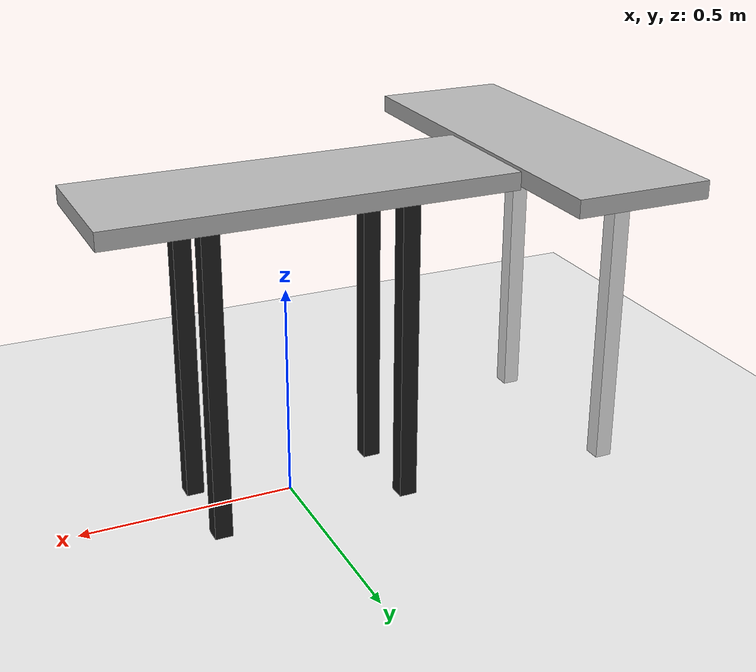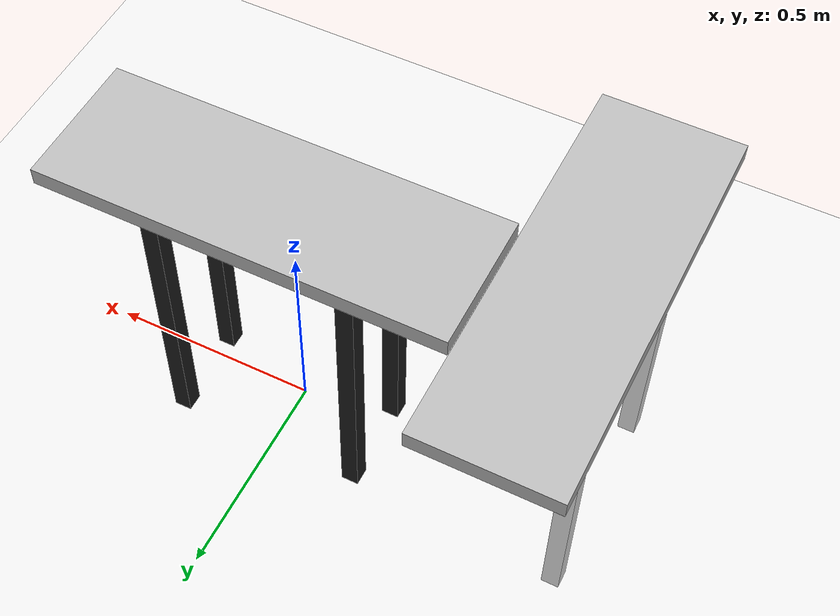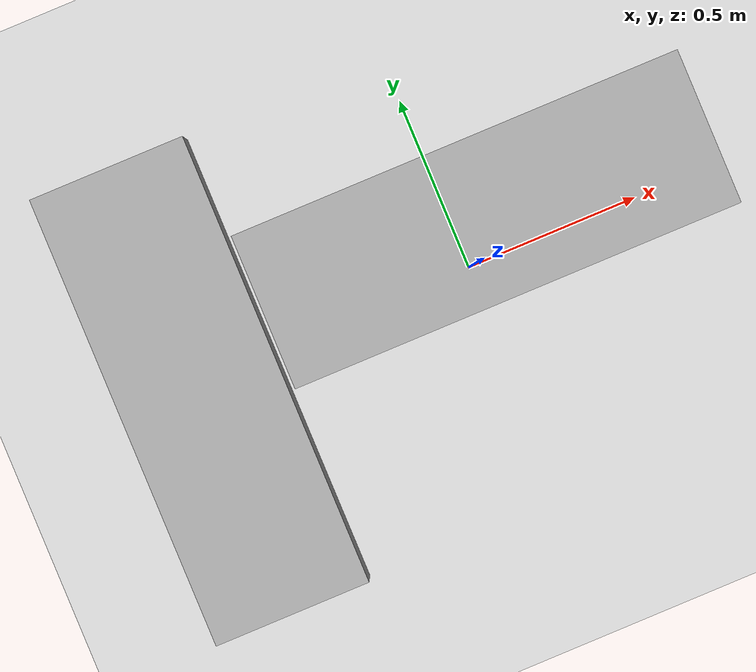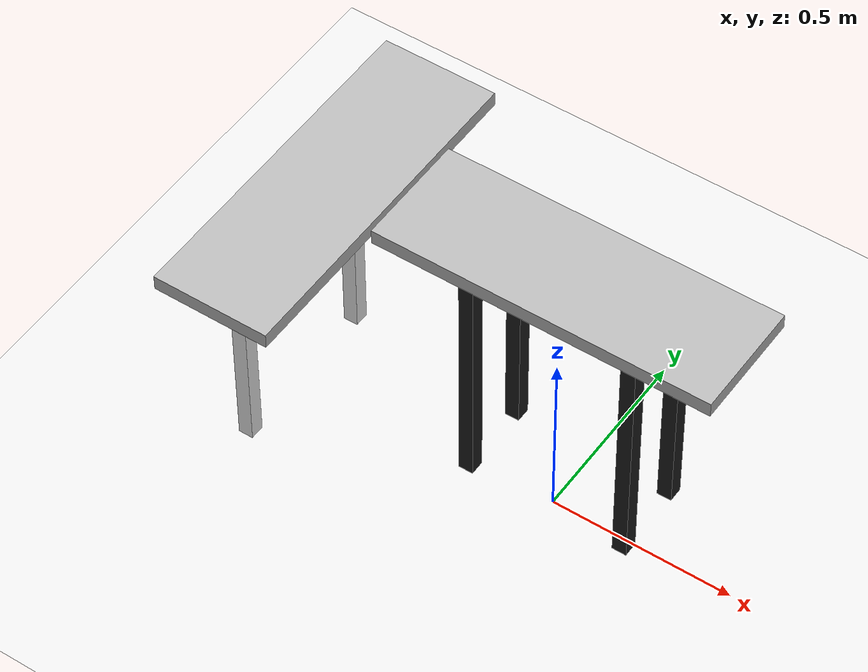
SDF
<sdf version="1.7">
 <world name="base">
  <plugin name="ros_link_attacher_plugin" filename="libgazebo_ros_link_attacher.so"/>
  <gravity>0 0 -9.81</gravity>
  <physics name="default_physics" default="0" type="ode">
   <max_step_size>0.001</max_step_size>
   <real_time_factor>1</real_time_factor>
   <real_time_update_rate>1000</real_time_update_rate>
  </physics>
  <scene><ambient>0.4 0.4 0.4 1</ambient><background>0.7 0.7 0.7 1</background><shadows>1</shadows></scene>
  <light name="sun" type="directional">
   <cast_shadows>0</cast_shadows>
   <pose>0 0 10 0 -0 0</pose>
   <diffuse>0.8 0.8 0.8 1</diffuse>
   <specular>0.2 0.2 0.2 1</specular>
   <attenuation>
    <range>1000</range>
    <constant>0.9</constant>
    <linear>0.01</linear>
    <quadratic>0.001</quadratic>
   </attenuation>
   <direction>-0.5 0.1 -0.9</direction>
   <spot><inner_angle>0</inner_angle><outer_angle>0</outer_angle><falloff>0</falloff></spot>
  </light>
  <model name="ground_plane">
   <static>1</static>
   <link name="link">
    <collision name="collision">
     <geometry><plane><normal>0 0 1</normal><size>100 100</size></plane></geometry>
     <surface>
      <contact><collide_bitmask>65535</collide_bitmask></contact>
      <friction><ode><mu>100</mu><mu2>50</mu2></ode></friction>
     </surface>
    </collision>
    <visual name="visual">
     <cast_shadows>0</cast_shadows>
     <geometry><plane><normal>0 0 1</normal><size>100 100</size></plane></geometry>
     <material>
      <script><uri>file://media/materials/scripts/gazebo.material</uri><name>Gazebo/White</name></script>
     </material>
    </visual>
   </link>
  </model>
  <magnetic_field>6e-06 2.3e-05 -4.2e-05</magnetic_field>
  <atmosphere type="adiabatic"/>
  <spherical_coordinates>
   <surface_model>EARTH_WGS84</surface_model>
   <latitude_deg>0</latitude_deg>
   <longitude_deg>0</longitude_deg>
   <elevation>0</elevation>
   <heading_deg>0</heading_deg>
  </spherical_coordinates>
  <model name="floor">
   <visual name="visual">
    <material>
     <script>
      <uri>model://floor/materials/scripts</uri>
      <uri>model://floor/materials/textures</uri>
      <name>parquet/Image</name>
     </script>
    </material>
    <pose>5 5 0.011 0 -0 0</pose>
    <cast_shadows>0</cast_shadows>
   </visual>
  </model>
  <model name="end_table">
   <static>1</static>
   <link name="top_plate">
    <pose>0 0 0.755 0 -0 0</pose>
    <collision name="top_plate_collision">
     <geometry><box><size>0.913 0.713 0.04</size></box></geometry>
     <surface><contact><collide_bitmask>1</collide_bitmask></contact></surface>
    </collision>
    <visual name="top_plate_visual">
     <geometry><box><size>0.913 0.313 0.04</size></box></geometry>
     <material>
      <script>
       <uri>model://end_table/materials/scripts</uri>
       <uri>model://end_table/materials/textures</uri>
       <name>grid/Image</name>
      </script>
     </material>
    </visual>
   </link>
   <link name="leg1">
    <pose>0.22 -0.1 0.4 0 -0 0</pose>
    <collision name="leg1_collision"><geometry><box><size>0.04 0.04 0.74</size></box></geometry></collision>
    <visual name="leg1_visual">
     <geometry><box><size>0.04 0.04 0.74</size></box></geometry>
     <material>
      <script><uri>file://media/materials/scripts/gazebo.material</uri><name>Gazebo/White</name></script>
     </material>
    </visual>
   </link>
   <link name="leg2">
    <pose>-0.22 -0.1 0.4 0 -0 0</pose>
    <collision name="leg2_collision"><geometry><box><size>0.04 0.04 0.74</size></box></geometry></collision>
    <visual name="leg2_visual">
     <geometry><box><size>0.04 0.04 0.74</size></box></geometry>
     <material>
      <script><uri>file://media/materials/scripts/gazebo.material</uri><name>Gazebo/White</name></script>
     </material>
    </visual>
   </link>
   <pose>-0.621398 -0.02786 0 0 0 -1.5707</pose>
  </model>
  <model name="end_table_0">
   <static>1</static>
   <link name="top_plate">
    <pose>0 0 0.755 0 -0 0</pose>
    <collision name="top_plate_collision">
     <geometry><box><size>0.913 0.713 0.04</size></box></geometry>
     <surface><contact><collide_bitmask>1</collide_bitmask></contact></surface>
    </collision>
    <visual name="top_plate_visual">
     <geometry><box><size>0.913 0.313 0.04</size></box></geometry>
     <material><script><uri>__default__</uri><name>__default__</name></script></material>
    </visual>
   </link>
   <link name="leg1">
    <pose>0.22 -0.1 0.4 0 -0 0</pose>
    <collision name="leg1_collision"><geometry><box><size>0.04 0.04 0.74</size></box></geometry></collision>
    <visual name="leg1_visual">
     <geometry><box><size>0.04 0.04 0.74</size></box></geometry>
     <material>
      <script><uri>file://media/materials/scripts/gazebo.material</uri><name>Gazebo/Black</name></script>
     </material>
    </visual>
   </link>
   <link name="leg2">
    <pose>-0.22 -0.1 0.4 0 -0 0</pose>
    <collision name="leg2_collision"><geometry><box><size>0.04 0.04 0.74</size></box></geometry></collision>
    <visual name="leg2_visual">
     <geometry><box><size>0.04 0.04 0.74</size></box></geometry>
     <material>
      <script><uri>file://media/materials/scripts/gazebo.material</uri><name>Gazebo/Black</name></script>
     </material>
    </visual>
   </link>
   <link name="leg3">
    <pose>-0.22 0.1 0.4 0 -0 0</pose>
    <collision name="leg3_collision"><geometry><box><size>0.04 0.04 0.74</size></box></geometry></collision>
    <visual name="leg2_visual">
     <geometry><box><size>0.04 0.04 0.74</size></box></geometry>
     <material>
      <script><uri>file://media/materials/scripts/gazebo.material</uri><name>Gazebo/Black</name></script>
     </material>
    </visual>
   </link>
   <link name="leg4">
    <pose>0.22 0.1 0.4 0 -0 0</pose>
    <collision name="leg3_collision"><geometry><box><size>0.04 0.04 0.74</size></box></geometry></collision>
    <visual name="leg2_visual">
     <geometry><box><size>0.04 0.04 0.74</size></box></geometry>
     <material>
      <script><uri>file://media/materials/scripts/gazebo.material</uri><name>Gazebo/Black</name></script>
     </material>
    </visual>
   </link>
   <pose>0.003501 0.062531 0 0 -0 0</pose>
  </model>
 </world>
</sdf>
